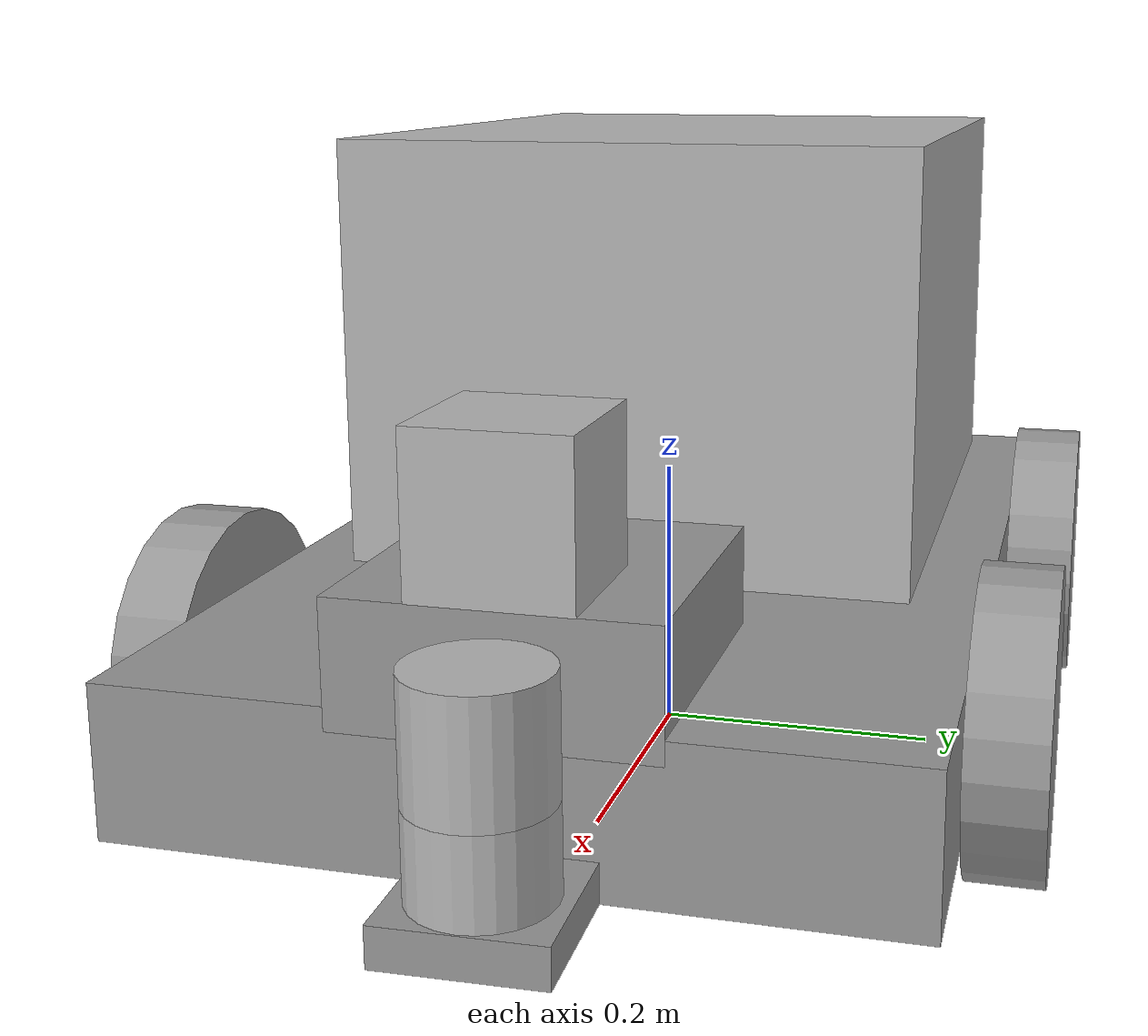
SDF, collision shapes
<?xml version='1.0'?>
<sdf version='1.6'>
  <model name='WheeledRobot_1'>
    <link name='link_0'>
      <pose frame=''>0 -0 0.1 0 -0 0</pose>
      <inertial>
        <mass>1</mass>
        <inertia>
          <ixx>0.166667</ixx>
          <ixy>0</ixy>
          <ixz>0</ixz>
          <iyy>0.166667</iyy>
          <iyz>0</iyz>
          <izz>0.166667</izz>
        </inertia>
        <pose frame=''>0 0 0 0 -0 0</pose>
      </inertial>
      <self_collide>0</self_collide>
      <kinematic>0</kinematic>
      <visual name='visual'>
        <pose frame=''>0 0 0 0 -0 0</pose>
        <geometry>
          <box>
            <size>0.8 0.5 0.1</size>
          </box>
        </geometry>
        <material>
          <lighting>1</lighting>
          <script>
            <uri>file://media/materials/scripts/gazebo.material</uri>
            <name>Gazebo/Grey</name>
          </script>
          <ambient>0.3 0.3 0.3 1</ambient>
          <diffuse>0.7 0.7 0.7 1</diffuse>
          <specular>0.01 0.01 0.01 1</specular>
          <emissive>0 0 0 1</emissive>
          <shader type='vertex'>
            <normal_map>__default__</normal_map>
          </shader>
        </material>
        <transparency>0</transparency>
        <cast_shadows>1</cast_shadows>
      </visual>
      <collision name='collision'>
        <laser_retro>0</laser_retro>
        <max_contacts>10</max_contacts>
        <pose frame=''>0 0 0 0 -0 0</pose>
        <geometry>
          <box>
            <size>0.8 0.5 0.1</size>
          </box>
        </geometry>
        <surface>
          <friction>
            <ode>
              <mu>1</mu>
              <mu2>1</mu2>
              <fdir1>0 0 0</fdir1>
              <slip1>0</slip1>
              <slip2>0</slip2>
            </ode>
            <torsional>
              <coefficient>1</coefficient>
              <patch_radius>0</patch_radius>
              <surface_radius>0</surface_radius>
              <use_patch_radius>1</use_patch_radius>
              <ode>
                <slip>0</slip>
              </ode>
            </torsional>
          </friction>
          <bounce>
            <restitution_coefficient>0</restitution_coefficient>
            <threshold>1e+06</threshold>
          </bounce>
          <contact>
            <collide_without_contact>0</collide_without_contact>
            <collide_without_contact_bitmask>1</collide_without_contact_bitmask>
            <collide_bitmask>1</collide_bitmask>
            <ode>
              <soft_cfm>0</soft_cfm>
              <soft_erp>0.2</soft_erp>
              <kp>1e+13</kp>
              <kd>1</kd>
              <max_vel>0.01</max_vel>
              <min_depth>0</min_depth>
            </ode>
            <bullet>
              <split_impulse>1</split_impulse>
              <split_impulse_penetration_threshold>-0.01</split_impulse_penetration_threshold>
              <soft_cfm>0</soft_cfm>
              <soft_erp>0.2</soft_erp>
              <kp>1e+13</kp>
              <kd>1</kd>
            </bullet>
          </contact>
        </surface>
      </collision>
    </link>
    <link name='link_1'>
      <pose frame=''>-0.2 -0.275013 0.1 1.5707 -0 0</pose>
      <inertial>
        <mass>1</mass>
        <inertia>
          <ixx>0.145833</ixx>
          <ixy>0</ixy>
          <ixz>0</ixz>
          <iyy>0.145833</iyy>
          <iyz>0</iyz>
          <izz>0.125</izz>
        </inertia>
        <pose frame=''>0 0 0 0 -0 0</pose>
      </inertial>
      <self_collide>0</self_collide>
      <kinematic>0</kinematic>
      <visual name='visual'>
        <pose frame=''>0 0 0 0 -0 0</pose>
        <geometry>
          <cylinder>
            <radius>0.1</radius>
            <length>0.05</length>
          </cylinder>
        </geometry>
        <material>
          <lighting>1</lighting>
          <script>
            <uri>file://media/materials/scripts/gazebo.material</uri>
            <name>Gazebo/Grey</name>
          </script>
          <ambient>0.3 0.3 0.3 1</ambient>
          <diffuse>0.7 0.7 0.7 1</diffuse>
          <specular>0.01 0.01 0.01 1</specular>
          <emissive>0 0 0 1</emissive>
          <shader type='vertex'>
            <normal_map>__default__</normal_map>
          </shader>
        </material>
        <transparency>0</transparency>
        <cast_shadows>1</cast_shadows>
      </visual>
      <collision name='collision'>
        <laser_retro>0</laser_retro>
        <max_contacts>10</max_contacts>
        <pose frame=''>0 0 0 0 -0 0</pose>
        <geometry>
          <cylinder>
            <radius>0.1</radius>
            <length>0.05</length>
          </cylinder>
        </geometry>
        <surface>
          <friction>
            <ode>
              <mu>1</mu>
              <mu2>1</mu2>
              <fdir1>0 0 0</fdir1>
              <slip1>0</slip1>
              <slip2>0</slip2>
            </ode>
            <torsional>
              <coefficient>1</coefficient>
              <patch_radius>0</patch_radius>
              <surface_radius>0</surface_radius>
              <use_patch_radius>1</use_patch_radius>
              <ode>
                <slip>0</slip>
              </ode>
            </torsional>
          </friction>
          <bounce>
            <restitution_coefficient>0</restitution_coefficient>
            <threshold>1e+06</threshold>
          </bounce>
          <contact>
            <collide_without_contact>0</collide_without_contact>
            <collide_without_contact_bitmask>1</collide_without_contact_bitmask>
            <collide_bitmask>1</collide_bitmask>
            <ode>
              <soft_cfm>0</soft_cfm>
              <soft_erp>0.2</soft_erp>
              <kp>1e+13</kp>
              <kd>1</kd>
              <max_vel>0.01</max_vel>
              <min_depth>0</min_depth>
            </ode>
            <bullet>
              <split_impulse>1</split_impulse>
              <split_impulse_penetration_threshold>-0.01</split_impulse_penetration_threshold>
              <soft_cfm>0</soft_cfm>
              <soft_erp>0.2</soft_erp>
              <kp>1e+13</kp>
              <kd>1</kd>
            </bullet>
          </contact>
        </surface>
      </collision>
    </link>
    <link name='link_1_0'>
      <pose frame=''>0.445 0.014081 0.0625 0 2e-06 1.60158</pose>
      <inertial>
        <mass>1</mass>
        <inertia>
          <ixx>0.166667</ixx>
          <ixy>0</ixy>
          <ixz>0</ixz>
          <iyy>0.166667</iyy>
          <iyz>0</iyz>
          <izz>0.166667</izz>
        </inertia>
        <pose frame=''>0 0 0 0 -0 0</pose>
      </inertial>
      <self_collide>0</self_collide>
      <kinematic>0</kinematic>
      <visual name='visual'>
        <pose frame=''>0 0 0 0 -0 0</pose>
        <geometry>
          <box>
            <size>0.1 0.1 0.025</size>
          </box>
        </geometry>
        <material>
          <lighting>1</lighting>
          <script>
            <uri>file://media/materials/scripts/gazebo.material</uri>
            <name>Gazebo/Grey</name>
          </script>
          <shader type='pixel'>
            <normal_map>__default__</normal_map>
          </shader>
          <ambient>0.3 0.3 0.3 1</ambient>
          <diffuse>0.7 0.7 0.7 1</diffuse>
          <specular>0.01 0.01 0.01 1</specular>
          <emissive>0 0 0 1</emissive>
        </material>
        <transparency>0</transparency>
        <cast_shadows>1</cast_shadows>
      </visual>
      <collision name='collision'>
        <laser_retro>0</laser_retro>
        <max_contacts>10</max_contacts>
        <pose frame=''>0 0 0 0 -0 0</pose>
        <geometry>
          <box>
            <size>0.1 0.1 0.025</size>
          </box>
        </geometry>
        <surface>
          <friction>
            <ode>
              <mu>1</mu>
              <mu2>1</mu2>
              <fdir1>0 0 0</fdir1>
              <slip1>0</slip1>
              <slip2>0</slip2>
            </ode>
            <torsional>
              <coefficient>1</coefficient>
              <patch_radius>0</patch_radius>
              <surface_radius>0</surface_radius>
              <use_patch_radius>1</use_patch_radius>
              <ode>
                <slip>0</slip>
              </ode>
            </torsional>
          </friction>
          <bounce>
            <restitution_coefficient>0</restitution_coefficient>
            <threshold>1e+06</threshold>
          </bounce>
          <contact>
            <collide_without_contact>0</collide_without_contact>
            <collide_without_contact_bitmask>1</collide_without_contact_bitmask>
            <collide_bitmask>1</collide_bitmask>
            <ode>
              <soft_cfm>0</soft_cfm>
              <soft_erp>0.2</soft_erp>
              <kp>1e+13</kp>
              <kd>1</kd>
              <max_vel>0.01</max_vel>
              <min_depth>0</min_depth>
            </ode>
            <bullet>
              <split_impulse>1</split_impulse>
              <split_impulse_penetration_threshold>-0.01</split_impulse_penetration_threshold>
              <soft_cfm>0</soft_cfm>
              <soft_erp>0.2</soft_erp>
              <kp>1e+13</kp>
              <kd>1</kd>
            </bullet>
          </contact>
        </surface>
      </collision>
    </link>
    <link name='link_1_0_clone'>
      <pose frame=''>-0.45 -0.009999 0.062499 0 -0 0</pose>
      <inertial>
        <mass>1</mass>
        <inertia>
          <ixx>0.166667</ixx>
          <ixy>0</ixy>
          <ixz>0</ixz>
          <iyy>0.166667</iyy>
          <iyz>0</iyz>
          <izz>0.166667</izz>
        </inertia>
        <pose frame=''>0 0 0 0 -0 0</pose>
      </inertial>
      <self_collide>0</self_collide>
      <kinematic>0</kinematic>
      <visual name='visual'>
        <pose frame=''>0 0 0 0 -0 0</pose>
        <geometry>
          <box>
            <size>0.1 0.1 0.025</size>
          </box>
        </geometry>
        <material>
          <lighting>1</lighting>
          <script>
            <uri>file://media/materials/scripts/gazebo.material</uri>
            <name>Gazebo/Grey</name>
          </script>
          <shader type='pixel'>
            <normal_map>__default__</normal_map>
          </shader>
          <ambient>0.3 0.3 0.3 1</ambient>
          <diffuse>0.7 0.7 0.7 1</diffuse>
          <specular>0.01 0.01 0.01 1</specular>
          <emissive>0 0 0 1</emissive>
        </material>
        <transparency>0</transparency>
        <cast_shadows>1</cast_shadows>
      </visual>
      <collision name='collision'>
        <laser_retro>0</laser_retro>
        <max_contacts>10</max_contacts>
        <pose frame=''>0 0 0 0 -0 0</pose>
        <geometry>
          <box>
            <size>0.1 0.1 0.025</size>
          </box>
        </geometry>
        <surface>
          <friction>
            <ode>
              <mu>1</mu>
              <mu2>1</mu2>
              <fdir1>0 0 0</fdir1>
              <slip1>0</slip1>
              <slip2>0</slip2>
            </ode>
            <torsional>
              <coefficient>1</coefficient>
              <patch_radius>0</patch_radius>
              <surface_radius>0</surface_radius>
              <use_patch_radius>1</use_patch_radius>
              <ode>
                <slip>0</slip>
              </ode>
            </torsional>
          </friction>
          <bounce>
            <restitution_coefficient>0</restitution_coefficient>
            <threshold>1e+06</threshold>
          </bounce>
          <contact>
            <collide_without_contact>0</collide_without_contact>
            <collide_without_contact_bitmask>1</collide_without_contact_bitmask>
            <collide_bitmask>1</collide_bitmask>
            <ode>
              <soft_cfm>0</soft_cfm>
              <soft_erp>0.2</soft_erp>
              <kp>1e+13</kp>
              <kd>1</kd>
              <max_vel>0.01</max_vel>
              <min_depth>0</min_depth>
            </ode>
            <bullet>
              <split_impulse>1</split_impulse>
              <split_impulse_penetration_threshold>-0.01</split_impulse_penetration_threshold>
              <soft_cfm>0</soft_cfm>
              <soft_erp>0.2</soft_erp>
              <kp>1e+13</kp>
              <kd>1</kd>
            </bullet>
          </contact>
        </surface>
      </collision>
    </link>
    <link name='link_1_clone'>
      <pose frame=''>-0.2 0.27501 0.1 1.5707 -0 0</pose>
      <inertial>
        <mass>1</mass>
        <inertia>
          <ixx>0.145833</ixx>
          <ixy>0</ixy>
          <ixz>0</ixz>
          <iyy>0.145833</iyy>
          <iyz>0</iyz>
          <izz>0.125</izz>
        </inertia>
        <pose frame=''>0 0 0 0 -0 0</pose>
      </inertial>
      <self_collide>0</self_collide>
      <kinematic>0</kinematic>
      <visual name='visual'>
        <pose frame=''>0 0 0 0 -0 0</pose>
        <geometry>
          <cylinder>
            <radius>0.1</radius>
            <length>0.05</length>
          </cylinder>
        </geometry>
        <material>
          <lighting>1</lighting>
          <script>
            <uri>file://media/materials/scripts/gazebo.material</uri>
            <name>Gazebo/Grey</name>
          </script>
          <ambient>0.3 0.3 0.3 1</ambient>
          <diffuse>0.7 0.7 0.7 1</diffuse>
          <specular>0.01 0.01 0.01 1</specular>
          <emissive>0 0 0 1</emissive>
          <shader type='vertex'>
            <normal_map>__default__</normal_map>
          </shader>
        </material>
        <transparency>0</transparency>
        <cast_shadows>1</cast_shadows>
      </visual>
      <collision name='collision'>
        <laser_retro>0</laser_retro>
        <max_contacts>10</max_contacts>
        <pose frame=''>0 0 0 0 -0 0</pose>
        <geometry>
          <cylinder>
            <radius>0.1</radius>
            <length>0.05</length>
          </cylinder>
        </geometry>
        <surface>
          <friction>
            <ode>
              <mu>1</mu>
              <mu2>1</mu2>
              <fdir1>0 0 0</fdir1>
              <slip1>0</slip1>
              <slip2>0</slip2>
            </ode>
            <torsional>
              <coefficient>1</coefficient>
              <patch_radius>0</patch_radius>
              <surface_radius>0</surface_radius>
              <use_patch_radius>1</use_patch_radius>
              <ode>
                <slip>0</slip>
              </ode>
            </torsional>
          </friction>
          <bounce>
            <restitution_coefficient>0</restitution_coefficient>
            <threshold>1e+06</threshold>
          </bounce>
          <contact>
            <collide_without_contact>0</collide_without_contact>
            <collide_without_contact_bitmask>1</collide_without_contact_bitmask>
            <collide_bitmask>1</collide_bitmask>
            <ode>
              <soft_cfm>0</soft_cfm>
              <soft_erp>0.2</soft_erp>
              <kp>1e+13</kp>
              <kd>1</kd>
              <max_vel>0.01</max_vel>
              <min_depth>0</min_depth>
            </ode>
            <bullet>
              <split_impulse>1</split_impulse>
              <split_impulse_penetration_threshold>-0.01</split_impulse_penetration_threshold>
              <soft_cfm>0</soft_cfm>
              <soft_erp>0.2</soft_erp>
              <kp>1e+13</kp>
              <kd>1</kd>
            </bullet>
          </contact>
        </surface>
      </collision>
    </link>
    <link name='link_1_clone_0'>
      <pose frame=''>0.2 -0.27501 0.1 1.5707 -0 0</pose>
      <inertial>
        <mass>1</mass>
        <inertia>
          <ixx>0.145833</ixx>
          <ixy>0</ixy>
          <ixz>0</ixz>
          <iyy>0.145833</iyy>
          <iyz>0</iyz>
          <izz>0.125</izz>
        </inertia>
        <pose frame=''>0 0 0 0 -0 0</pose>
      </inertial>
      <self_collide>0</self_collide>
      <kinematic>0</kinematic>
      <visual name='visual'>
        <pose frame=''>0 0 0 0 -0 0</pose>
        <geometry>
          <cylinder>
            <radius>0.1</radius>
            <length>0.05</length>
          </cylinder>
        </geometry>
        <material>
          <lighting>1</lighting>
          <script>
            <uri>file://media/materials/scripts/gazebo.material</uri>
            <name>Gazebo/Grey</name>
          </script>
          <ambient>0.3 0.3 0.3 1</ambient>
          <diffuse>0.7 0.7 0.7 1</diffuse>
          <specular>0.01 0.01 0.01 1</specular>
          <emissive>0 0 0 1</emissive>
          <shader type='vertex'>
            <normal_map>__default__</normal_map>
          </shader>
        </material>
        <transparency>0</transparency>
        <cast_shadows>1</cast_shadows>
      </visual>
      <collision name='collision'>
        <laser_retro>0</laser_retro>
        <max_contacts>10</max_contacts>
        <pose frame=''>0 0 0 0 -0 0</pose>
        <geometry>
          <cylinder>
            <radius>0.1</radius>
            <length>0.05</length>
          </cylinder>
        </geometry>
        <surface>
          <friction>
            <ode>
              <mu>1</mu>
              <mu2>1</mu2>
              <fdir1>0 0 0</fdir1>
              <slip1>0</slip1>
              <slip2>0</slip2>
            </ode>
            <torsional>
              <coefficient>1</coefficient>
              <patch_radius>0</patch_radius>
              <surface_radius>0</surface_radius>
              <use_patch_radius>1</use_patch_radius>
              <ode>
                <slip>0</slip>
              </ode>
            </torsional>
          </friction>
          <bounce>
            <restitution_coefficient>0</restitution_coefficient>
            <threshold>1e+06</threshold>
          </bounce>
          <contact>
            <collide_without_contact>0</collide_without_contact>
            <collide_without_contact_bitmask>1</collide_without_contact_bitmask>
            <collide_bitmask>1</collide_bitmask>
            <ode>
              <soft_cfm>0</soft_cfm>
              <soft_erp>0.2</soft_erp>
              <kp>1e+13</kp>
              <kd>1</kd>
              <max_vel>0.01</max_vel>
              <min_depth>0</min_depth>
            </ode>
            <bullet>
              <split_impulse>1</split_impulse>
              <split_impulse_penetration_threshold>-0.01</split_impulse_penetration_threshold>
              <soft_cfm>0</soft_cfm>
              <soft_erp>0.2</soft_erp>
              <kp>1e+13</kp>
              <kd>1</kd>
            </bullet>
          </contact>
        </surface>
      </collision>
    </link>
    <link name='link_1_clone_0_clone'>
      <pose frame=''>0.2 0.27501 0.1 1.5707 -0 0</pose>
      <inertial>
        <mass>1</mass>
        <inertia>
          <ixx>0.145833</ixx>
          <ixy>0</ixy>
          <ixz>0</ixz>
          <iyy>0.145833</iyy>
          <iyz>0</iyz>
          <izz>0.125</izz>
        </inertia>
        <pose frame=''>0 0 0 0 -0 0</pose>
      </inertial>
      <self_collide>0</self_collide>
      <kinematic>0</kinematic>
      <visual name='visual'>
        <pose frame=''>0 0 0 0 -0 0</pose>
        <geometry>
          <cylinder>
            <radius>0.1</radius>
            <length>0.05</length>
          </cylinder>
        </geometry>
        <material>
          <lighting>1</lighting>
          <script>
            <uri>file://media/materials/scripts/gazebo.material</uri>
            <name>Gazebo/Grey</name>
          </script>
          <ambient>0.3 0.3 0.3 1</ambient>
          <diffuse>0.7 0.7 0.7 1</diffuse>
          <specular>0.01 0.01 0.01 1</specular>
          <emissive>0 0 0 1</emissive>
          <shader type='vertex'>
            <normal_map>__default__</normal_map>
          </shader>
        </material>
        <transparency>0</transparency>
        <cast_shadows>1</cast_shadows>
      </visual>
      <collision name='collision'>
        <laser_retro>0</laser_retro>
        <max_contacts>10</max_contacts>
        <pose frame=''>0 0 0 0 -0 0</pose>
        <geometry>
          <cylinder>
            <radius>0.1</radius>
            <length>0.05</length>
          </cylinder>
        </geometry>
        <surface>
          <friction>
            <ode>
              <mu>1</mu>
              <mu2>1</mu2>
              <fdir1>0 0 0</fdir1>
              <slip1>0</slip1>
              <slip2>0</slip2>
            </ode>
            <torsional>
              <coefficient>1</coefficient>
              <patch_radius>0</patch_radius>
              <surface_radius>0</surface_radius>
              <use_patch_radius>1</use_patch_radius>
              <ode>
                <slip>0</slip>
              </ode>
            </torsional>
          </friction>
          <bounce>
            <restitution_coefficient>0</restitution_coefficient>
            <threshold>1e+06</threshold>
          </bounce>
          <contact>
            <collide_without_contact>0</collide_without_contact>
            <collide_without_contact_bitmask>1</collide_without_contact_bitmask>
            <collide_bitmask>1</collide_bitmask>
            <ode>
              <soft_cfm>0</soft_cfm>
              <soft_erp>0.2</soft_erp>
              <kp>1e+13</kp>
              <kd>1</kd>
              <max_vel>0.01</max_vel>
              <min_depth>0</min_depth>
            </ode>
            <bullet>
              <split_impulse>1</split_impulse>
              <split_impulse_penetration_threshold>-0.01</split_impulse_penetration_threshold>
              <soft_cfm>0</soft_cfm>
              <soft_erp>0.2</soft_erp>
              <kp>1e+13</kp>
              <kd>1</kd>
            </bullet>
          </contact>
        </surface>
      </collision>
    </link>
    <link name='link_2'>
      <pose frame=''>0.3 -0 0.175 0 -0 0</pose>
      <inertial>
        <mass>1</mass>
        <inertia>
          <ixx>0.166667</ixx>
          <ixy>0</ixy>
          <ixz>0</ixz>
          <iyy>0.166667</iyy>
          <iyz>0</iyz>
          <izz>0.166667</izz>
        </inertia>
        <pose frame=''>0 0 0 0 -0 0</pose>
      </inertial>
      <self_collide>0</self_collide>
      <kinematic>0</kinematic>
      <visual name='visual'>
        <pose frame=''>0 0 0 0 -0 0</pose>
        <geometry>
          <box>
            <size>0.2 0.2 0.08</size>
          </box>
        </geometry>
        <material>
          <lighting>1</lighting>
          <script>
            <uri>file://media/materials/scripts/gazebo.material</uri>
            <name>Gazebo/Grey</name>
          </script>
          <shader type='pixel'>
            <normal_map>__default__</normal_map>
          </shader>
          <ambient>0.3 0.3 0.3 1</ambient>
          <diffuse>0.7 0.7 0.7 1</diffuse>
          <specular>0.01 0.01 0.01 1</specular>
          <emissive>0 0 0 1</emissive>
        </material>
        <transparency>0</transparency>
        <cast_shadows>1</cast_shadows>
      </visual>
      <collision name='collision'>
        <laser_retro>0</laser_retro>
        <max_contacts>10</max_contacts>
        <pose frame=''>0 0 0 0 -0 0</pose>
        <geometry>
          <box>
            <size>0.2 0.2 0.08</size>
          </box>
        </geometry>
        <surface>
          <friction>
            <ode>
              <mu>1</mu>
              <mu2>1</mu2>
              <fdir1>0 0 0</fdir1>
              <slip1>0</slip1>
              <slip2>0</slip2>
            </ode>
            <torsional>
              <coefficient>1</coefficient>
              <patch_radius>0</patch_radius>
              <surface_radius>0</surface_radius>
              <use_patch_radius>1</use_patch_radius>
              <ode>
                <slip>0</slip>
              </ode>
            </torsional>
          </friction>
          <bounce>
            <restitution_coefficient>0</restitution_coefficient>
            <threshold>1e+06</threshold>
          </bounce>
          <contact>
            <collide_without_contact>0</collide_without_contact>
            <collide_without_contact_bitmask>1</collide_without_contact_bitmask>
            <collide_bitmask>1</collide_bitmask>
            <ode>
              <soft_cfm>0</soft_cfm>
              <soft_erp>0.2</soft_erp>
              <kp>1e+13</kp>
              <kd>1</kd>
              <max_vel>0.01</max_vel>
              <min_depth>0</min_depth>
            </ode>
            <bullet>
              <split_impulse>1</split_impulse>
              <split_impulse_penetration_threshold>-0.01</split_impulse_penetration_threshold>
              <soft_cfm>0</soft_cfm>
              <soft_erp>0.2</soft_erp>
              <kp>1e+13</kp>
              <kd>1</kd>
            </bullet>
          </contact>
        </surface>
      </collision>
    </link>
    <model name='camera'>
      <pose frame=''>0.351491 0.001582 0.265212 0 -0 0</pose>
      <link name='link'>
        <inertial>
          <mass>0.1</mass>
          <inertia>
            <ixx>0.000166667</ixx>
            <iyy>0.000166667</iyy>
            <izz>0.000166667</izz>
            <ixy>0</ixy>
            <ixz>0</ixz>
            <iyz>0</iyz>
          </inertia>
        </inertial>
        <collision name='collision'>
          <geometry>
            <box>
              <size>0.1 0.1 0.1</size>
            </box>
          </geometry>
          <max_contacts>10</max_contacts>
          <surface>
            <contact>
              <ode/>
            </contact>
            <bounce/>
            <friction>
              <torsional>
                <ode/>
              </torsional>
              <ode/>
            </friction>
          </surface>
        </collision>
        <visual name='visual'>
          <geometry>
            <box>
              <size>0.1 0.1 0.1</size>
            </box>
          </geometry>
        </visual>
        <sensor name='camera' type='camera'>
          <camera name='__default__'>
            <horizontal_fov>1.047</horizontal_fov>
            <image>
              <width>320</width>
              <height>240</height>
            </image>
            <clip>
              <near>0.1</near>
              <far>100</far>
            </clip>
          </camera>
          <always_on>1</always_on>
          <update_rate>30</update_rate>
          <visualize>1</visualize>
        </sensor>
        <self_collide>0</self_collide>
        <kinematic>0</kinematic>
      </link>
    </model>
    <model name='camera_0'>
      <pose frame=''>-0.45 -0.009998 0.124999 0 -0 3.13915</pose>
      <link name='link'>
        <inertial>
          <mass>0.1</mass>
          <inertia>
            <ixx>0.000166667</ixx>
            <iyy>0.000166667</iyy>
            <izz>0.000166667</izz>
            <ixy>0</ixy>
            <ixz>0</ixz>
            <iyz>0</iyz>
          </inertia>
        </inertial>
        <collision name='collision'>
          <geometry>
            <box>
              <size>0.1 0.1 0.1</size>
            </box>
          </geometry>
          <max_contacts>10</max_contacts>
          <surface>
            <contact>
              <ode/>
            </contact>
            <bounce/>
            <friction>
              <torsional>
                <ode/>
              </torsional>
              <ode/>
            </friction>
          </surface>
        </collision>
        <visual name='visual'>
          <geometry>
            <box>
              <size>0.1 0.1 0.1</size>
            </box>
          </geometry>
        </visual>
        <sensor name='camera' type='camera'>
          <camera name='__default__'>
            <horizontal_fov>1.047</horizontal_fov>
            <image>
              <width>320</width>
              <height>240</height>
            </image>
            <clip>
              <near>0.1</near>
              <far>100</far>
            </clip>
          </camera>
          <always_on>1</always_on>
          <update_rate>30</update_rate>
          <visualize>1</visualize>
        </sensor>
        <self_collide>0</self_collide>
        <kinematic>0</kinematic>
      </link>
    </model>
    <model name='cardboard_box'>
      <pose frame=''>-0.110814 0.000203 0.301952 0 -0 0</pose>
      <link name='link'>
        <inertial>
          <mass>2</mass>
          <inertia>
            <ixx>0.0416667</ixx>
            <ixy>0</ixy>
            <ixz>0</ixz>
            <iyy>0.0566667</iyy>
            <iyz>0</iyz>
            <izz>0.0683333</izz>
          </inertia>
        </inertial>
        <collision name='collision'>
          <geometry>
            <box>
              <size>0.5 0.4 0.3</size>
            </box>
          </geometry>
          <surface>
            <friction>
              <ode>
                <mu>1</mu>
                <mu2>1</mu2>
              </ode>
            </friction>
            <contact>
              <ode>
                <kp>1e+07</kp>
                <kd>1</kd>
                <min_depth>0.001</min_depth>
                <max_vel>0.1</max_vel>
              </ode>
            </contact>
          </surface>
        </collision>
        <visual name='visual'>
          <pose frame=''>0 0 -0.15 0 -0 0</pose>
          <geometry>
            <mesh>
              <uri>model://cardboard_box/meshes/cardboard_box.dae</uri>
              <scale>1.25932 1.00745 0.755591</scale>
            </mesh>
          </geometry>
        </visual>
      </link>
    </model>
    <model name='velodyne'>
      <link name='base'>
        <pose frame=''>0 0 0.029335 0 -0 0</pose>
        <inertial>
          <mass>1.2</mass>
          <inertia>
            <ixx>0.00108747</ixx>
            <iyy>0.00108747</iyy>
            <izz>0.00109244</izz>
            <ixy>0</ixy>
            <ixz>0</ixz>
            <iyz>0</iyz>
          </inertia>
        </inertial>
        <collision name='base_collision'>
          <geometry>
            <cylinder>
              <radius>0.04267</radius>
              <length>0.05867</length>
            </cylinder>
          </geometry>
          <max_contacts>10</max_contacts>
          <surface>
            <contact>
              <ode/>
            </contact>
            <bounce/>
            <friction>
              <torsional>
                <ode/>
              </torsional>
              <ode/>
            </friction>
          </surface>
        </collision>
        <visual name='base_visual'>
          <pose frame=''>0 0 -0.029335 0 -0 0</pose>
          <geometry>
            <mesh>
              <uri>model://velodyne_hdl32/meshes/velodyne_base.dae</uri>
            </mesh>
          </geometry>
        </visual>
        <self_collide>0</self_collide>
        <kinematic>0</kinematic>
      </link>
      <link name='top'>
        <pose frame=''>0 0 0.095455 0 -0 0</pose>
        <inertial>
          <mass>0.1</mass>
          <inertia>
            <ixx>9.0623e-05</ixx>
            <iyy>9.0623e-05</iyy>
            <izz>9.1036e-05</izz>
            <ixy>0</ixy>
            <ixz>0</ixz>
            <iyz>0</iyz>
          </inertia>
        </inertial>
        <collision name='top_collision'>
          <geometry>
            <cylinder>
              <radius>0.04267</radius>
              <length>0.07357</length>
            </cylinder>
          </geometry>
          <max_contacts>10</max_contacts>
          <surface>
            <contact>
              <ode/>
            </contact>
            <bounce/>
            <friction>
              <torsional>
                <ode/>
              </torsional>
              <ode/>
            </friction>
          </surface>
        </collision>
        <visual name='top_visual'>
          <pose frame=''>0 0 -0.037679 0 -0 1.5707</pose>
          <geometry>
            <mesh>
              <uri>model://velodyne_hdl32/meshes/velodyne_top.dae</uri>
            </mesh>
          </geometry>
        </visual>
        <sensor name='sensor' type='ray'>
          <pose frame=''>0 0 -0.004645 1.5707 -0 0</pose>
          <visualize>1</visualize>
          <update_rate>30</update_rate>
          <ray>
            <noise>
              <type>gaussian</type>
              <mean>0</mean>
              <stddev>0.1</stddev>
            </noise>
            <scan>
              <horizontal>
                <samples>32</samples>
                <resolution>1</resolution>
                <min_angle>-0.535292</min_angle>
                <max_angle>0.186227</max_angle>
              </horizontal>
              <vertical>
                <samples>1</samples>
                <min_angle>0</min_angle>
                <max_angle>0</max_angle>
              </vertical>
            </scan>
            <range>
              <min>0.1</min>
              <max>70</max>
              <resolution>0.02</resolution>
            </range>
          </ray>
        </sensor>
        <self_collide>0</self_collide>
        <kinematic>0</kinematic>
      </link>
      <joint name='joint' type='revolute'>
        <pose frame=''>0 0 -0.036785 0 -0 0</pose>
        <parent>base</parent>
        <child>top</child>
        <axis>
          <xyz>0 0 1</xyz>
          <limit>
            <lower>-1e+16</lower>
            <upper>1e+16</upper>
          </limit>
          <use_parent_model_frame>0</use_parent_model_frame>
          <dynamics>
            <spring_reference>0</spring_reference>
            <spring_stiffness>0</spring_stiffness>
          </dynamics>
        </axis>
      </joint>
      <pose frame=''>0.451261 0.013895 0.070664 0 -0 0</pose>
    </model>
    <joint name='link_0_JOINT_10' type='revolute'>
      <parent>link_0</parent>
      <child>link_1_clone</child>
      <pose frame=''>0 0 0 0 -0 0</pose>
      <axis>
        <xyz>0 0 1</xyz>
        <use_parent_model_frame>0</use_parent_model_frame>
        <limit>
          <lower>-1.79769e+308</lower>
          <upper>1.79769e+308</upper>
          <effort>-1</effort>
          <velocity>-1</velocity>
        </limit>
        <dynamics>
          <spring_reference>0</spring_reference>
          <spring_stiffness>0</spring_stiffness>
          <damping>0</damping>
          <friction>0</friction>
        </dynamics>
      </axis>
      <physics>
        <ode>
          <limit>
            <cfm>0</cfm>
            <erp>0.2</erp>
          </limit>
          <suspension>
            <cfm>0</cfm>
            <erp>0.2</erp>
          </suspension>
        </ode>
      </physics>
    </joint>
    <joint name='link_0_JOINT_11' type='revolute'>
      <parent>link_0</parent>
      <child>link_1_clone_0</child>
      <pose frame=''>0 0 0 0 -0 0</pose>
      <axis>
        <xyz>1 0 0</xyz>
        <use_parent_model_frame>0</use_parent_model_frame>
        <limit>
          <lower>-1.79769e+308</lower>
          <upper>1.79769e+308</upper>
          <effort>-1</effort>
          <velocity>-1</velocity>
        </limit>
        <dynamics>
          <spring_reference>0</spring_reference>
          <spring_stiffness>0</spring_stiffness>
          <damping>0</damping>
          <friction>0</friction>
        </dynamics>
      </axis>
      <physics>
        <ode>
          <limit>
            <cfm>0</cfm>
            <erp>0.2</erp>
          </limit>
          <suspension>
            <cfm>0</cfm>
            <erp>0.2</erp>
          </suspension>
        </ode>
      </physics>
    </joint>
    <joint name='link_0_JOINT_12' type='revolute'>
      <parent>link_0</parent>
      <child>link_1_clone_0</child>
      <pose frame=''>0 0 0 0 -0 0</pose>
      <axis>
        <xyz>0 0 1</xyz>
        <use_parent_model_frame>0</use_parent_model_frame>
        <limit>
          <lower>-1.79769e+308</lower>
          <upper>1.79769e+308</upper>
          <effort>-1</effort>
          <velocity>-1</velocity>
        </limit>
        <dynamics>
          <spring_reference>0</spring_reference>
          <spring_stiffness>0</spring_stiffness>
          <damping>0</damping>
          <friction>0</friction>
        </dynamics>
      </axis>
      <physics>
        <ode>
          <limit>
            <cfm>0</cfm>
            <erp>0.2</erp>
          </limit>
          <suspension>
            <cfm>0</cfm>
            <erp>0.2</erp>
          </suspension>
        </ode>
      </physics>
    </joint>
    <joint name='link_0_JOINT_13' type='revolute'>
      <parent>link_0</parent>
      <child>link_1_clone_0_clone</child>
      <pose frame=''>0 0 0 0 -0 0</pose>
      <axis>
        <xyz>0 0 1</xyz>
        <use_parent_model_frame>0</use_parent_model_frame>
        <limit>
          <lower>-1.79769e+308</lower>
          <upper>1.79769e+308</upper>
          <effort>-1</effort>
          <velocity>-1</velocity>
        </limit>
        <dynamics>
          <spring_reference>0</spring_reference>
          <spring_stiffness>0</spring_stiffness>
          <damping>0</damping>
          <friction>0</friction>
        </dynamics>
      </axis>
      <physics>
        <ode>
          <limit>
            <cfm>0</cfm>
            <erp>0.2</erp>
          </limit>
          <suspension>
            <cfm>0</cfm>
            <erp>0.2</erp>
          </suspension>
        </ode>
      </physics>
    </joint>
    <joint name='link_0_JOINT_3' type='fixed'>
      <parent>link_0</parent>
      <child>link_1_0</child>
      <pose frame=''>0 0 0 0 -0 0</pose>
      <physics>
        <ode>
          <limit>
            <cfm>0</cfm>
            <erp>0.2</erp>
          </limit>
          <suspension>
            <cfm>0</cfm>
            <erp>0.2</erp>
          </suspension>
        </ode>
      </physics>
    </joint>
    <joint name='link_0_JOINT_6' type='fixed'>
      <parent>link_0</parent>
      <child>link_2</child>
      <pose frame=''>0 0 0 0 -0 0</pose>
      <physics>
        <ode>
          <limit>
            <cfm>0</cfm>
            <erp>0.2</erp>
          </limit>
          <suspension>
            <cfm>0</cfm>
            <erp>0.2</erp>
          </suspension>
        </ode>
      </physics>
    </joint>
    <joint name='link_0_JOINT_7' type='revolute'>
      <parent>link_0</parent>
      <child>link_2</child>
      <pose frame=''>0 0 0 0 -0 0</pose>
      <axis>
        <xyz>1 0 0</xyz>
        <use_parent_model_frame>0</use_parent_model_frame>
        <limit>
          <lower>-1.79769e+308</lower>
          <upper>1.79769e+308</upper>
          <effort>-1</effort>
          <velocity>-1</velocity>
        </limit>
        <dynamics>
          <spring_reference>0</spring_reference>
          <spring_stiffness>0</spring_stiffness>
          <damping>0</damping>
          <friction>0</friction>
        </dynamics>
      </axis>
      <physics>
        <ode>
          <limit>
            <cfm>0</cfm>
            <erp>0.2</erp>
          </limit>
          <suspension>
            <cfm>0</cfm>
            <erp>0.2</erp>
          </suspension>
        </ode>
      </physics>
    </joint>
    <joint name='link_0_JOINT_8' type='revolute'>
      <parent>link_0</parent>
      <child>link_2</child>
      <pose frame=''>0 0 0 0 -0 0</pose>
      <axis>
        <xyz>1 0 0</xyz>
        <use_parent_model_frame>0</use_parent_model_frame>
        <limit>
          <lower>-1.79769e+308</lower>
          <upper>1.79769e+308</upper>
          <effort>-1</effort>
          <velocity>-1</velocity>
        </limit>
        <dynamics>
          <spring_reference>0</spring_reference>
          <spring_stiffness>0</spring_stiffness>
          <damping>0</damping>
          <friction>0</friction>
        </dynamics>
      </axis>
      <physics>
        <ode>
          <limit>
            <cfm>0</cfm>
            <erp>0.2</erp>
          </limit>
          <suspension>
            <cfm>0</cfm>
            <erp>0.2</erp>
          </suspension>
        </ode>
      </physics>
    </joint>
    <joint name='link_0_JOINT_9' type='revolute'>
      <parent>link_0</parent>
      <child>link_1</child>
      <pose frame=''>0 0 0 0 -0 0</pose>
      <axis>
        <xyz>0 0 1</xyz>
        <use_parent_model_frame>0</use_parent_model_frame>
        <limit>
          <lower>-1.79769e+308</lower>
          <upper>1.79769e+308</upper>
          <effort>-1</effort>
          <velocity>-1</velocity>
        </limit>
        <dynamics>
          <spring_reference>0</spring_reference>
          <spring_stiffness>0</spring_stiffness>
          <damping>0</damping>
          <friction>0</friction>
        </dynamics>
      </axis>
      <physics>
        <ode>
          <limit>
            <cfm>0</cfm>
            <erp>0.2</erp>
          </limit>
          <suspension>
            <cfm>0</cfm>
            <erp>0.2</erp>
          </suspension>
        </ode>
      </physics>
    </joint>
    <static>0</static>
    <allow_auto_disable>1</allow_auto_disable>
  </model>
</sdf>
